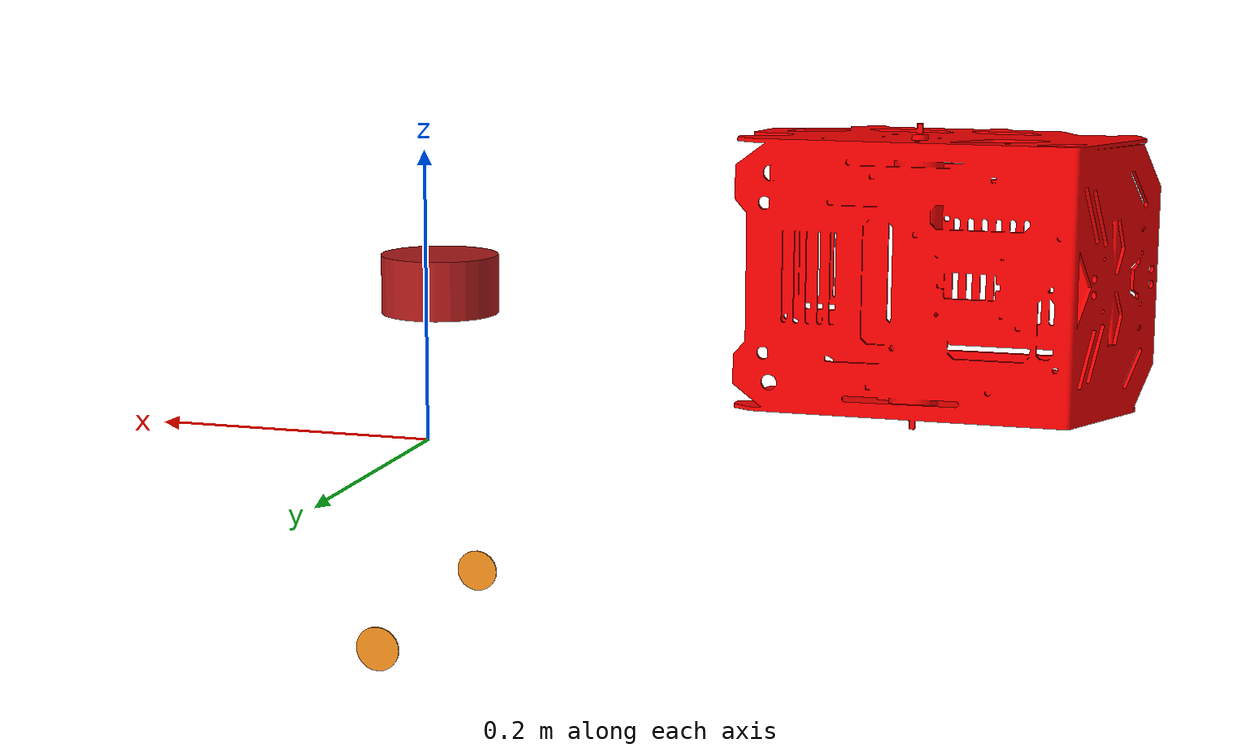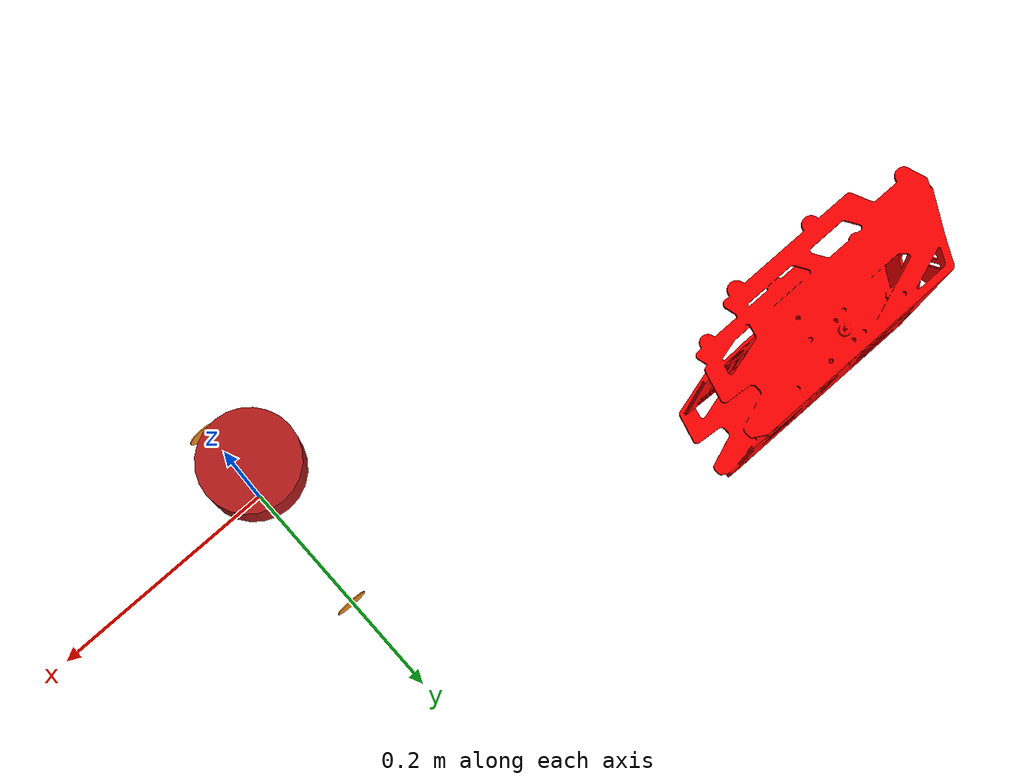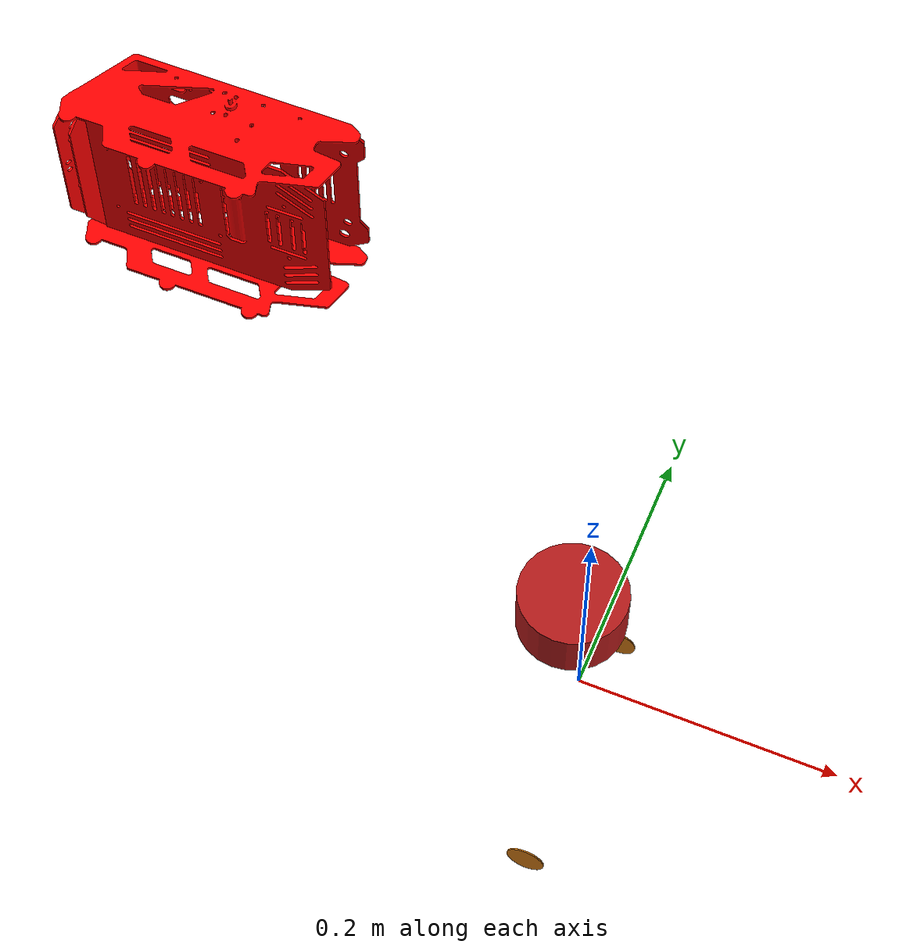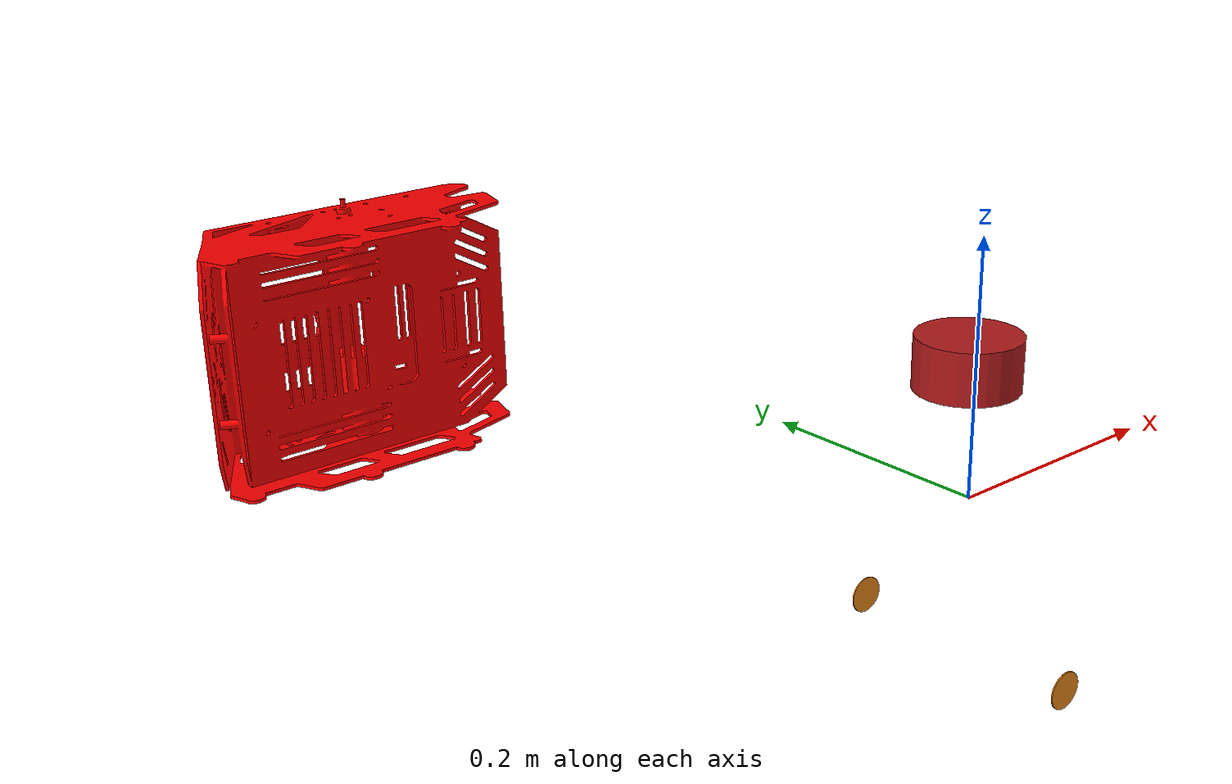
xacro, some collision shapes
<?xml version="1.0" ?>
<robot name="ros_tank" xmlns:xacro="http://www.ros.org/wiki/xacro">

    <xacro:include filename="$(find ros_tank_description)/urdf/base_urdf.xacro" />
    <xacro:include filename="$(find ros_tank_description)/urdf/gazebo.xacro" />
    <xacro:include filename="$(find ros_tank_description)/urdf/control.xacro" />

</robot>

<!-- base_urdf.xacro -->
<robot>
    <link name="base_link"></link>

    <!-- Link - chassis -->
    <link name="link_chassis">
        <visual>
            <geometry>
                <mesh filename="package://ros_tank_description/meshes/tank_body.stl" scale="0.00111 0.00111 0.0011"/>
            </geometry>
            <material name="Red">
                <color rgba="1 0 0 1" />
            </material>
        </visual>

        <collision>
            <origin xyz="0 0 -0.08" rpy="0 0 0"/>
            <geometry>
                <box size="0.25 0.25 0.1" />
            </geometry>
        </collision>

        <inertial>
            <mass value="10"/>
            <origin rpy="0 0 0" xyz="0 0 0"/>
            <inertia ixx="0.1" ixy="0" ixz="0" iyy="0.1" iyz="0" izz="0.1"/>
        </inertial>
    </link>

    <joint name="base_link_joint" type="fixed">
        <origin rpy="0 0 0" xyz="0 0 0" />
        <parent link="base_link" />
        <child link="link_chassis" />
    </joint>

    <!-- Joint - laser scan -->
    <joint name="joint_laser_scan_chassis" type="fixed">
        <origin rpy="0 0 0" xyz="-0.01 0 0.11" />
        <child link="link_laser_scan" />
        <parent link="link_chassis" />
        <joint_properties damping="1.0" friction="1.0" />
    </joint>

    <!-- Link - laser scan -->
    <link name="link_laser_scan">
        <visual>
            <origin xyz="0 0 0" rpy="0 0 0" />
            <geometry>
                <mesh filename="package://ros_tank_description/meshes/lidarA1.stl" pose="0 0 0" scale="0.00111 0.00111 0.0011"/>
            </geometry>
            <material name="Red">
                <color rgba="0.7 0.1 0.1 1" />
            </material>
        </visual>

        <collision>
            <origin xyz="0 0 0" rpy="0 0 0"/>
            <geometry>
                <cylinder radius="0.04" length="0.04"/>
            </geometry>
        </collision>

        <inertial>
            <mass value="0.1"/>
            <origin rpy="0 0 0" xyz="0 0 0.0204"/>
            <inertia ixx="0.01" ixy="0.0" ixz="0.0" iyy="0.01" iyz="0.0" izz="0.01"/>
        </inertial>
    </link>

    <!-- Joint - pointcloud -->
    <joint name="pointcloud_link_joint" type="fixed">
        <origin rpy="0 0 0" xyz="0.051 0.0 0"/>
        <parent link="link_chassis"/>
        <child link="pointcloud_link"/>
        <axis xyz="0 0 0"/>
    </joint>

    <!-- Link - pointcloud -->
    <link name="pointcloud_link"></link>

    <!-- Joint - left wheel -->
    <joint name="joint_left_wheel" type="continuous">
        <origin rpy="0 0 0" xyz="0 0.1 -0.12"/>
        <child link="left_wheel"/>
        <parent link="link_chassis"/>
        <axis rpy="0 0 0" xyz="0 1 0"/>
        <limit effort="10000" velocity="1000"/>
        <joint_properties damping="1.0" friction="1.0"/>
    </joint>

    <!-- Link - left wheel -->
    <link name="left_wheel">
        <visual>
            <origin rpy="0 1.5707 1.5707" xyz="0 0 0"/>
            <geometry>
            <cylinder length="0.001" radius="0.015"/>
            </geometry>
        </visual>

        <collision>
            <origin rpy="0 1.5707 1.5707" xyz="0 0 0"/>
            <geometry>
            <cylinder length="0.001" radius="0.015"/>
            </geometry>
        </collision>

        <inertial>
            <origin rpy="0 1.5707 1.5707" xyz="0 0 0"/>
            <mass value="0.05"/>
            <inertia ixx="1.531666666666667e-05" ixy="0" ixz="0" iyy="1.531666666666667e-05" iyz="0" izz="3.0625000000000006e-05"/>
        </inertial>
    </link>

    <!-- Joint - right wheel -->
    <joint name="joint_right_wheel" type="continuous">
        <origin rpy="0 0 0" xyz="0 -0.1 -0.12"/>
        <child link="right_wheel"/>
        <parent link="link_chassis"/>
        <axis rpy="0 0 0" xyz="0 1 0"/>
        <limit effort="10000" velocity="1000"/>
        <joint_properties damping="1.0" friction="1.0"/>
    </joint>

    <!-- Link - right wheel -->
    <link name="right_wheel">
        <visual>
            <origin rpy="0 1.5707 1.5707" xyz="0 0 0"/>
            <geometry>
            <cylinder length="0.001" radius="0.015"/>
            </geometry>
        </visual>

        <collision>
            <origin rpy="0 1.5707 1.5707" xyz="0 0 0"/>
            <geometry>
            <cylinder length="0.001" radius="0.015"/>
            </geometry>
        </collision>

        <inertial>
            <origin rpy="0 1.5707 1.5707" xyz="0 0 0"/>
            <mass value="0.05"/>
            <inertia ixx="1.531666666666667e-05" ixy="0" ixz="0" iyy="1.531666666666667e-05" iyz="0" izz="3.0625000000000006e-05"/>
        </inertial>
    </link>

</robot>
